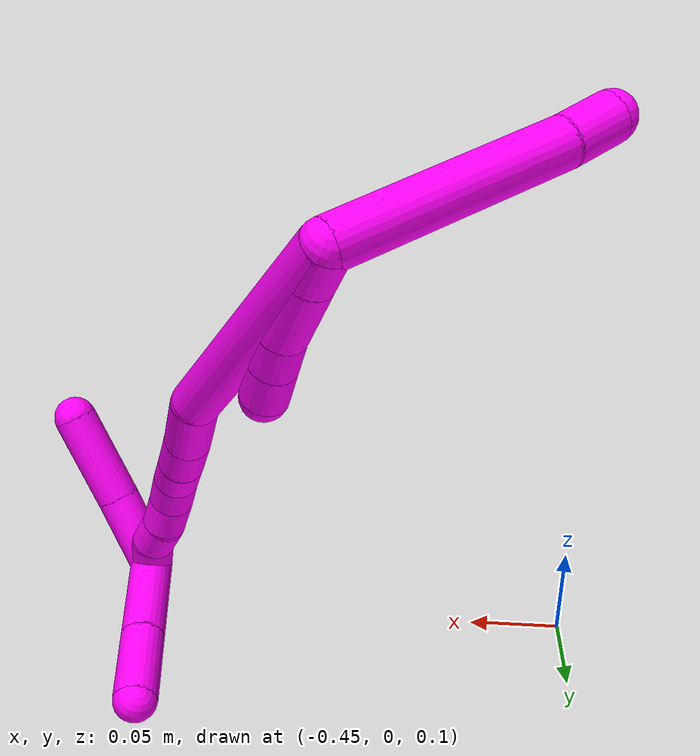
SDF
<sdf version="1.7">
 <world name="default">
  <model name="10">
   <static>0</static>
   <link name="10">
    <collision name="collision-cylinder-e_1_2_8">
     <pose>-0.019665 -0.055153 0.016631 1.27793 -0.328966 -0.245389</pose>
     <geometry><cylinder><radius>0.0125</radius><length>0.12174</length></cylinder></geometry>
     <surface>
      <friction><ode><mu>1.16</mu><mu2>1.16</mu2><slip1>0</slip1><slip2>0</slip2></ode></friction>
      <contact><ode><kp>1e+06</kp><kd>1</kd><max_vel>0</max_vel><min_depth>0.001</min_depth></ode></contact>
     </surface>
    </collision>
    <visual name="visual-cylinder-e_1_2_8">
     <pose>-0.019665 -0.055153 0.016631 1.27793 -0.328966 -0.245389</pose>
     <geometry><cylinder><radius>0.0125</radius><length>0.12174</length></cylinder></geometry>
     <material><ambient>1 0 0.964706 1</ambient></material>
    </visual>
    <collision name="collision-cylinder-e_2_8_6">
     <pose>-0.042602 -0.123569 0.036875 1.30483 -0.233699 -0.17889</pose>
     <geometry><cylinder><radius>0.0125</radius><length>0.02826</length></cylinder></geometry>
     <surface>
      <friction><ode><mu>1.16</mu><mu2>1.16</mu2><slip1>0</slip1><slip2>0</slip2></ode></friction>
      <contact><ode><kp>1e+06</kp><kd>1</kd><max_vel>0</max_vel><min_depth>0.001</min_depth></ode></contact>
     </surface>
    </collision>
    <visual name="visual-cylinder-e_2_8_6">
     <pose>-0.042602 -0.123569 0.036875 1.30483 -0.233699 -0.17889</pose>
     <geometry><cylinder><radius>0.0125</radius><length>0.02826</length></cylinder></geometry>
     <material><ambient>1 0 0.964706 1</ambient></material>
    </visual>
    <collision name="collision-cylinder-e_1_2_9">
     <pose>0.000258 9.8e-05 -0.010558 -3.13228 0.024465 -2.41398</pose>
     <geometry><cylinder><radius>0.0125</radius><length>0.021123</length></cylinder></geometry>
     <surface>
      <friction><ode><mu>1.16</mu><mu2>1.16</mu2><slip1>0</slip1><slip2>0</slip2></ode></friction>
      <contact><ode><kp>1e+06</kp><kd>1</kd><max_vel>0</max_vel><min_depth>0.001</min_depth></ode></contact>
     </surface>
    </collision>
    <visual name="visual-cylinder-e_1_2_9">
     <pose>0.000258 9.8e-05 -0.010558 -3.13228 0.024465 -2.41398</pose>
     <geometry><cylinder><radius>0.0125</radius><length>0.021123</length></cylinder></geometry>
     <material><ambient>1 0 0.964706 1</ambient></material>
    </visual>
    <collision name="collision-cylinder-e_2_9_10">
     <pose>0.000638 0.000677 -0.039267 -3.11512 0.00669 -0.495032</pose>
     <geometry><cylinder><radius>0.0125</radius><length>0.036316</length></cylinder></geometry>
     <surface>
      <friction><ode><mu>1.16</mu><mu2>1.16</mu2><slip1>0</slip1><slip2>0</slip2></ode></friction>
      <contact><ode><kp>1e+06</kp><kd>1</kd><max_vel>0</max_vel><min_depth>0.001</min_depth></ode></contact>
     </surface>
    </collision>
    <visual name="visual-cylinder-e_2_9_10">
     <pose>0.000638 0.000677 -0.039267 -3.11512 0.00669 -0.495032</pose>
     <geometry><cylinder><radius>0.0125</radius><length>0.036316</length></cylinder></geometry>
     <material><ambient>1 0 0.964706 1</ambient></material>
    </visual>
    <collision name="collision-cylinder-e_3_10_11">
     <pose>-0.000333 0.001132 -0.067466 3.13899 -0.108283 -3.09363</pose>
     <geometry><cylinder><radius>0.0125</radius><length>0.020214</length></cylinder></geometry>
     <surface>
      <friction><ode><mu>1.16</mu><mu2>1.16</mu2><slip1>0</slip1><slip2>0</slip2></ode></friction>
      <contact><ode><kp>1e+06</kp><kd>1</kd><max_vel>0</max_vel><min_depth>0.001</min_depth></ode></contact>
     </surface>
    </collision>
    <visual name="visual-cylinder-e_3_10_11">
     <pose>-0.000333 0.001132 -0.067466 3.13899 -0.108283 -3.09363</pose>
     <geometry><cylinder><radius>0.0125</radius><length>0.020214</length></cylinder></geometry>
     <material><ambient>1 0 0.964706 1</ambient></material>
    </visual>
    <collision name="collision-cylinder-e_4_11_5">
     <pose>-0.002674 0.000923 -0.088616 3.12511 -0.111984 -2.84966</pose>
     <geometry><cylinder><radius>0.0125</radius><length>0.022347</length></cylinder></geometry>
     <surface>
      <friction><ode><mu>1.16</mu><mu2>1.16</mu2><slip1>0</slip1><slip2>0</slip2></ode></friction>
      <contact><ode><kp>1e+06</kp><kd>1</kd><max_vel>0</max_vel><min_depth>0.001</min_depth></ode></contact>
     </surface>
    </collision>
    <visual name="visual-cylinder-e_4_11_5">
     <pose>-0.002674 0.000923 -0.088616 3.12511 -0.111984 -2.84966</pose>
     <geometry><cylinder><radius>0.0125</radius><length>0.022347</length></cylinder></geometry>
     <material><ambient>1 0 0.964706 1</ambient></material>
    </visual>
    <collision name="collision-cylinder-e_1_2_12">
     <pose>0.012799 0.003184 -0.066685 -3.09388 0.189418 -2.64939</pose>
     <geometry><cylinder><radius>0.0125</radius><length>0.135955</length></cylinder></geometry>
     <surface>
      <friction><ode><mu>1.16</mu><mu2>1.16</mu2><slip1>0</slip1><slip2>0</slip2></ode></friction>
      <contact><ode><kp>1e+06</kp><kd>1</kd><max_vel>0</max_vel><min_depth>0.001</min_depth></ode></contact>
     </surface>
    </collision>
    <visual name="visual-cylinder-e_1_2_12">
     <pose>0.012799 0.003184 -0.066685 -3.09388 0.189418 -2.64939</pose>
     <geometry><cylinder><radius>0.0125</radius><length>0.135955</length></cylinder></geometry>
     <material><ambient>1 0 0.964706 1</ambient></material>
    </visual>
    <collision name="collision-cylinder-e_2_12_13">
     <pose>0.025297 0.00301 -0.152558 2.96831 -0.015455 -0.177467</pose>
     <geometry><cylinder><radius>0.0125</radius><length>0.038962</length></cylinder></geometry>
     <surface>
      <friction><ode><mu>1.16</mu><mu2>1.16</mu2><slip1>0</slip1><slip2>0</slip2></ode></friction>
      <contact><ode><kp>1e+06</kp><kd>1</kd><max_vel>0</max_vel><min_depth>0.001</min_depth></ode></contact>
     </surface>
    </collision>
    <visual name="visual-cylinder-e_2_12_13">
     <pose>0.025297 0.00301 -0.152558 2.96831 -0.015455 -0.177467</pose>
     <geometry><cylinder><radius>0.0125</radius><length>0.038962</length></cylinder></geometry>
     <material><ambient>1 0 0.964706 1</ambient></material>
    </visual>
    <collision name="collision-cylinder-e_3_13_14">
     <pose>0.024821 -0.001588 -0.183988 3.04072 -0.014287 -0.281176</pose>
     <geometry><cylinder><radius>0.0125</radius><length>0.024614</length></cylinder></geometry>
     <surface>
      <friction><ode><mu>1.16</mu><mu2>1.16</mu2><slip1>0</slip1><slip2>0</slip2></ode></friction>
      <contact><ode><kp>1e+06</kp><kd>1</kd><max_vel>0</max_vel><min_depth>0.001</min_depth></ode></contact>
     </surface>
    </collision>
    <visual name="visual-cylinder-e_3_13_14">
     <pose>0.024821 -0.001588 -0.183988 3.04072 -0.014287 -0.281176</pose>
     <geometry><cylinder><radius>0.0125</radius><length>0.024614</length></cylinder></geometry>
     <material><ambient>1 0 0.964706 1</ambient></material>
    </visual>
    <collision name="collision-cylinder-e_4_14_15">
     <pose>0.024893 -0.004215 -0.206264 3.00413 0.024539 0.352761</pose>
     <geometry><cylinder><radius>0.0125</radius><length>0.020262</length></cylinder></geometry>
     <surface>
      <friction><ode><mu>1.16</mu><mu2>1.16</mu2><slip1>0</slip1><slip2>0</slip2></ode></friction>
      <contact><ode><kp>1e+06</kp><kd>1</kd><max_vel>0</max_vel><min_depth>0.001</min_depth></ode></contact>
     </surface>
    </collision>
    <visual name="visual-cylinder-e_4_14_15">
     <pose>0.024893 -0.004215 -0.206264 3.00413 0.024539 0.352761</pose>
     <geometry><cylinder><radius>0.0125</radius><length>0.020262</length></cylinder></geometry>
     <material><ambient>1 0 0.964706 1</ambient></material>
    </visual>
    <collision name="collision-cylinder-e_5_15_16">
     <pose>0.024114 -0.005645 -0.226327 3.13736 -0.102163 -3.05895</pose>
     <geometry><cylinder><radius>0.0125</radius><length>0.020167</length></cylinder></geometry>
     <surface>
      <friction><ode><mu>1.16</mu><mu2>1.16</mu2><slip1>0</slip1><slip2>0</slip2></ode></friction>
      <contact><ode><kp>1e+06</kp><kd>1</kd><max_vel>0</max_vel><min_depth>0.001</min_depth></ode></contact>
     </surface>
    </collision>
    <visual name="visual-cylinder-e_5_15_16">
     <pose>0.024114 -0.005645 -0.226327 3.13736 -0.102163 -3.05895</pose>
     <geometry><cylinder><radius>0.0125</radius><length>0.020167</length></cylinder></geometry>
     <material><ambient>1 0 0.964706 1</ambient></material>
    </visual>
    <collision name="collision-cylinder-e_6_16_17">
     <pose>0.021555 -0.003845 -0.246083 -2.9544 -0.153386 1.37197</pose>
     <geometry><cylinder><radius>0.0125</radius><length>0.020032</length></cylinder></geometry>
     <surface>
      <friction><ode><mu>1.16</mu><mu2>1.16</mu2><slip1>0</slip1><slip2>0</slip2></ode></friction>
      <contact><ode><kp>1e+06</kp><kd>1</kd><max_vel>0</max_vel><min_depth>0.001</min_depth></ode></contact>
     </surface>
    </collision>
    <visual name="visual-cylinder-e_6_16_17">
     <pose>0.021555 -0.003845 -0.246083 -2.9544 -0.153386 1.37197</pose>
     <geometry><cylinder><radius>0.0125</radius><length>0.020032</length></cylinder></geometry>
     <material><ambient>1 0 0.964706 1</ambient></material>
    </visual>
    <collision name="collision-cylinder-e_7_17_18">
     <pose>0.02043 -0.000543 -0.265695 -2.99499 0.040517 -0.53844</pose>
     <geometry><cylinder><radius>0.0125</radius><length>0.020004</length></cylinder></geometry>
     <surface>
      <friction><ode><mu>1.16</mu><mu2>1.16</mu2><slip1>0</slip1><slip2>0</slip2></ode></friction>
      <contact><ode><kp>1e+06</kp><kd>1</kd><max_vel>0</max_vel><min_depth>0.001</min_depth></ode></contact>
     </surface>
    </collision>
    <visual name="visual-cylinder-e_7_17_18">
     <pose>0.02043 -0.000543 -0.265695 -2.99499 0.040517 -0.53844</pose>
     <geometry><cylinder><radius>0.0125</radius><length>0.020004</length></cylinder></geometry>
     <material><ambient>1 0 0.964706 1</ambient></material>
    </visual>
    <collision name="collision-cylinder-e_8_18_1">
     <pose>0.01842 0.001243 -0.285283 -3.10793 -0.243876 2.8686</pose>
     <geometry><cylinder><radius>0.0125</radius><length>0.020004</length></cylinder></geometry>
     <surface>
      <friction><ode><mu>1.16</mu><mu2>1.16</mu2><slip1>0</slip1><slip2>0</slip2></ode></friction>
      <contact><ode><kp>1e+06</kp><kd>1</kd><max_vel>0</max_vel><min_depth>0.001</min_depth></ode></contact>
     </surface>
    </collision>
    <visual name="visual-cylinder-e_8_18_1">
     <pose>0.01842 0.001243 -0.285283 -3.10793 -0.243876 2.8686</pose>
     <geometry><cylinder><radius>0.0125</radius><length>0.020004</length></cylinder></geometry>
     <material><ambient>1 0 0.964706 1</ambient></material>
    </visual>
    <collision name="collision-cylinder-e_1_1_19">
     <pose>0.035965 -0.001808 -0.285066 0.328297 1.08744 0.199592</pose>
     <geometry><cylinder><radius>0.0125</radius><length>0.045087</length></cylinder></geometry>
     <surface>
      <friction><ode><mu>1.16</mu><mu2>1.16</mu2><slip1>0</slip1><slip2>0</slip2></ode></friction>
      <contact><ode><kp>1e+06</kp><kd>1</kd><max_vel>0</max_vel><min_depth>0.001</min_depth></ode></contact>
     </surface>
    </collision>
    <visual name="visual-cylinder-e_1_1_19">
     <pose>0.035965 -0.001808 -0.285066 0.328297 1.08744 0.199592</pose>
     <geometry><cylinder><radius>0.0125</radius><length>0.045087</length></cylinder></geometry>
     <material><ambient>1 0 0.964706 1</ambient></material>
    </visual>
    <collision name="collision-cylinder-e_2_19_4">
     <pose>0.07992 -0.008118 -0.262127 0.22142 1.06314 0.13055</pose>
     <geometry><cylinder><radius>0.0125</radius><length>0.054913</length></cylinder></geometry>
     <surface>
      <friction><ode><mu>1.16</mu><mu2>1.16</mu2><slip1>0</slip1><slip2>0</slip2></ode></friction>
      <contact><ode><kp>1e+06</kp><kd>1</kd><max_vel>0</max_vel><min_depth>0.001</min_depth></ode></contact>
     </surface>
    </collision>
    <visual name="visual-cylinder-e_2_19_4">
     <pose>0.07992 -0.008118 -0.262127 0.22142 1.06314 0.13055</pose>
     <geometry><cylinder><radius>0.0125</radius><length>0.054913</length></cylinder></geometry>
     <material><ambient>1 0 0.964706 1</ambient></material>
    </visual>
    <collision name="collision-cylinder-e_1_1_20">
     <pose>8.1e-05 0.024191 -0.288803 -1.3041 -0.59651 0.461061</pose>
     <geometry><cylinder><radius>0.0125</radius><length>0.056692</length></cylinder></geometry>
     <surface>
      <friction><ode><mu>1.16</mu><mu2>1.16</mu2><slip1>0</slip1><slip2>0</slip2></ode></friction>
      <contact><ode><kp>1e+06</kp><kd>1</kd><max_vel>0</max_vel><min_depth>0.001</min_depth></ode></contact>
     </surface>
    </collision>
    <visual name="visual-cylinder-e_1_1_20">
     <pose>8.1e-05 0.024191 -0.288803 -1.3041 -0.59651 0.461061</pose>
     <geometry><cylinder><radius>0.0125</radius><length>0.056692</length></cylinder></geometry>
     <material><ambient>1 0 0.964706 1</ambient></material>
    </visual>
    <collision name="collision-cylinder-e_2_20_3">
     <pose>-0.028114 0.064083 -0.278146 -1.31715 -0.602498 0.471907</pose>
     <geometry><cylinder><radius>0.0125</radius><length>0.043308</length></cylinder></geometry>
     <surface>
      <friction><ode><mu>1.16</mu><mu2>1.16</mu2><slip1>0</slip1><slip2>0</slip2></ode></friction>
      <contact><ode><kp>1e+06</kp><kd>1</kd><max_vel>0</max_vel><min_depth>0.001</min_depth></ode></contact>
     </surface>
    </collision>
    <visual name="visual-cylinder-e_2_20_3">
     <pose>-0.028114 0.064083 -0.278146 -1.31715 -0.602498 0.471907</pose>
     <geometry><cylinder><radius>0.0125</radius><length>0.043308</length></cylinder></geometry>
     <material><ambient>1 0 0.964706 1</ambient></material>
    </visual>
    <collision name="collision-sphere-3">
     <pose>-0.040385 0.081354 -0.273669 0 -0 0</pose>
     <geometry><sphere><radius>0.0125</radius></sphere></geometry>
     <surface>
      <friction><ode><mu>1.16</mu><mu2>1.16</mu2><slip1>0</slip1><slip2>0</slip2></ode></friction>
      <contact><ode><kp>1e+06</kp><kd>1</kd><max_vel>0</max_vel><min_depth>0.001</min_depth></ode></contact>
     </surface>
    </collision>
    <visual name="visual-sphere-3">
     <pose>-0.040385 0.081354 -0.273669 0 -0 0</pose>
     <geometry><sphere><radius>0.0125</radius></sphere></geometry>
     <material><ambient>1 0 0.964706 1</ambient></material>
    </visual>
    <collision name="collision-sphere-20">
     <pose>-0.015842 0.046813 -0.282623 0 -0 0</pose>
     <geometry><sphere><radius>0.0125</radius></sphere></geometry>
     <surface>
      <friction><ode><mu>1.16</mu><mu2>1.16</mu2><slip1>0</slip1><slip2>0</slip2></ode></friction>
      <contact><ode><kp>1e+06</kp><kd>1</kd><max_vel>0</max_vel><min_depth>0.001</min_depth></ode></contact>
     </surface>
    </collision>
    <visual name="visual-sphere-20">
     <pose>-0.015842 0.046813 -0.282623 0 -0 0</pose>
     <geometry><sphere><radius>0.0125</radius></sphere></geometry>
     <material><ambient>1 0 0.964706 1</ambient></material>
    </visual>
    <collision name="collision-sphere-4">
     <pose>0.103914 -0.011049 -0.249105 0 -0 0</pose>
     <geometry><sphere><radius>0.0125</radius></sphere></geometry>
     <surface>
      <friction><ode><mu>1.16</mu><mu2>1.16</mu2><slip1>0</slip1><slip2>0</slip2></ode></friction>
      <contact><ode><kp>1e+06</kp><kd>1</kd><max_vel>0</max_vel><min_depth>0.001</min_depth></ode></contact>
     </surface>
    </collision>
    <visual name="visual-sphere-4">
     <pose>0.103914 -0.011049 -0.249105 0 -0 0</pose>
     <geometry><sphere><radius>0.0125</radius></sphere></geometry>
     <material><ambient>1 0 0.964706 1</ambient></material>
    </visual>
    <collision name="collision-sphere-11">
     <pose>-0.001425 0.001106 -0.077514 0 -0 0</pose>
     <geometry><sphere><radius>0.0125</radius></sphere></geometry>
     <surface>
      <friction><ode><mu>1.16</mu><mu2>1.16</mu2><slip1>0</slip1><slip2>0</slip2></ode></friction>
      <contact><ode><kp>1e+06</kp><kd>1</kd><max_vel>0</max_vel><min_depth>0.001</min_depth></ode></contact>
     </surface>
    </collision>
    <visual name="visual-sphere-11">
     <pose>-0.001425 0.001106 -0.077514 0 -0 0</pose>
     <geometry><sphere><radius>0.0125</radius></sphere></geometry>
     <material><ambient>1 0 0.964706 1</ambient></material>
    </visual>
    <collision name="collision-sphere-10">
     <pose>0.00076 0.001158 -0.057418 0 -0 0</pose>
     <geometry><sphere><radius>0.0125</radius></sphere></geometry>
     <surface>
      <friction><ode><mu>1.16</mu><mu2>1.16</mu2><slip1>0</slip1><slip2>0</slip2></ode></friction>
      <contact><ode><kp>1e+06</kp><kd>1</kd><max_vel>0</max_vel><min_depth>0.001</min_depth></ode></contact>
     </surface>
    </collision>
    <visual name="visual-sphere-10">
     <pose>0.00076 0.001158 -0.057418 0 -0 0</pose>
     <geometry><sphere><radius>0.0125</radius></sphere></geometry>
     <material><ambient>1 0 0.964706 1</ambient></material>
    </visual>
    <collision name="collision-sphere-6">
     <pose>-0.045874 -0.136831 0.040488 0 -0 0</pose>
     <geometry><sphere><radius>0.0125</radius></sphere></geometry>
     <surface>
      <friction><ode><mu>1.16</mu><mu2>1.16</mu2><slip1>0</slip1><slip2>0</slip2></ode></friction>
      <contact><ode><kp>1e+06</kp><kd>1</kd><max_vel>0</max_vel><min_depth>0.001</min_depth></ode></contact>
     </surface>
    </collision>
    <visual name="visual-sphere-6">
     <pose>-0.045874 -0.136831 0.040488 0 -0 0</pose>
     <geometry><sphere><radius>0.0125</radius></sphere></geometry>
     <material><ambient>1 0 0.964706 1</ambient></material>
    </visual>
    <collision name="collision-sphere-9">
     <pose>0.000517 0.000197 -0.021116 0 -0 0</pose>
     <geometry><sphere><radius>0.0125</radius></sphere></geometry>
     <surface>
      <friction><ode><mu>1.16</mu><mu2>1.16</mu2><slip1>0</slip1><slip2>0</slip2></ode></friction>
      <contact><ode><kp>1e+06</kp><kd>1</kd><max_vel>0</max_vel><min_depth>0.001</min_depth></ode></contact>
     </surface>
    </collision>
    <visual name="visual-sphere-9">
     <pose>0.000517 0.000197 -0.021116 0 -0 0</pose>
     <geometry><sphere><radius>0.0125</radius></sphere></geometry>
     <material><ambient>1 0 0.964706 1</ambient></material>
    </visual>
    <collision name="collision-sphere-2">
     <geometry><sphere><radius>0.0125</radius></sphere></geometry>
     <surface>
      <friction><ode><mu>1.16</mu><mu2>1.16</mu2><slip1>0</slip1><slip2>0</slip2></ode></friction>
      <contact><ode><kp>1e+06</kp><kd>1</kd><max_vel>0</max_vel><min_depth>0.001</min_depth></ode></contact>
     </surface>
    </collision>
    <visual name="visual-sphere-2">
     <geometry><sphere><radius>0.0125</radius></sphere></geometry>
     <material><ambient>1 0 0.964706 1</ambient></material>
    </visual>
    <collision name="collision-sphere-19">
     <pose>0.055926 -0.005187 -0.275148 0 -0 0</pose>
     <geometry><sphere><radius>0.0125</radius></sphere></geometry>
     <surface>
      <friction><ode><mu>1.16</mu><mu2>1.16</mu2><slip1>0</slip1><slip2>0</slip2></ode></friction>
      <contact><ode><kp>1e+06</kp><kd>1</kd><max_vel>0</max_vel><min_depth>0.001</min_depth></ode></contact>
     </surface>
    </collision>
    <visual name="visual-sphere-19">
     <pose>0.055926 -0.005187 -0.275148 0 -0 0</pose>
     <geometry><sphere><radius>0.0125</radius></sphere></geometry>
     <material><ambient>1 0 0.964706 1</ambient></material>
    </visual>
    <collision name="collision-sphere-8">
     <pose>-0.03933 -0.110306 0.033262 0 -0 0</pose>
     <geometry><sphere><radius>0.0125</radius></sphere></geometry>
     <surface>
      <friction><ode><mu>1.16</mu><mu2>1.16</mu2><slip1>0</slip1><slip2>0</slip2></ode></friction>
      <contact><ode><kp>1e+06</kp><kd>1</kd><max_vel>0</max_vel><min_depth>0.001</min_depth></ode></contact>
     </surface>
    </collision>
    <visual name="visual-sphere-8">
     <pose>-0.03933 -0.110306 0.033262 0 -0 0</pose>
     <geometry><sphere><radius>0.0125</radius></sphere></geometry>
     <material><ambient>1 0 0.964706 1</ambient></material>
    </visual>
    <collision name="collision-sphere-5">
     <pose>-0.003922 0.00074 -0.099718 0 -0 0</pose>
     <geometry><sphere><radius>0.0125</radius></sphere></geometry>
     <surface>
      <friction><ode><mu>1.16</mu><mu2>1.16</mu2><slip1>0</slip1><slip2>0</slip2></ode></friction>
      <contact><ode><kp>1e+06</kp><kd>1</kd><max_vel>0</max_vel><min_depth>0.001</min_depth></ode></contact>
     </surface>
    </collision>
    <visual name="visual-sphere-5">
     <pose>-0.003922 0.00074 -0.099718 0 -0 0</pose>
     <geometry><sphere><radius>0.0125</radius></sphere></geometry>
     <material><ambient>1 0 0.964706 1</ambient></material>
    </visual>
    <collision name="collision-sphere-12">
     <pose>0.025599 0.006369 -0.133371 0 -0 0</pose>
     <geometry><sphere><radius>0.0125</radius></sphere></geometry>
     <surface>
      <friction><ode><mu>1.16</mu><mu2>1.16</mu2><slip1>0</slip1><slip2>0</slip2></ode></friction>
      <contact><ode><kp>1e+06</kp><kd>1</kd><max_vel>0</max_vel><min_depth>0.001</min_depth></ode></contact>
     </surface>
    </collision>
    <visual name="visual-sphere-12">
     <pose>0.025599 0.006369 -0.133371 0 -0 0</pose>
     <geometry><sphere><radius>0.0125</radius></sphere></geometry>
     <material><ambient>1 0 0.964706 1</ambient></material>
    </visual>
    <collision name="collision-sphere-13">
     <pose>0.024996 -0.000348 -0.171745 0 -0 0</pose>
     <geometry><sphere><radius>0.0125</radius></sphere></geometry>
     <surface>
      <friction><ode><mu>1.16</mu><mu2>1.16</mu2><slip1>0</slip1><slip2>0</slip2></ode></friction>
      <contact><ode><kp>1e+06</kp><kd>1</kd><max_vel>0</max_vel><min_depth>0.001</min_depth></ode></contact>
     </surface>
    </collision>
    <visual name="visual-sphere-13">
     <pose>0.024996 -0.000348 -0.171745 0 -0 0</pose>
     <geometry><sphere><radius>0.0125</radius></sphere></geometry>
     <material><ambient>1 0 0.964706 1</ambient></material>
    </visual>
    <collision name="collision-sphere-14">
     <pose>0.024645 -0.002827 -0.196232 0 -0 0</pose>
     <geometry><sphere><radius>0.0125</radius></sphere></geometry>
     <surface>
      <friction><ode><mu>1.16</mu><mu2>1.16</mu2><slip1>0</slip1><slip2>0</slip2></ode></friction>
      <contact><ode><kp>1e+06</kp><kd>1</kd><max_vel>0</max_vel><min_depth>0.001</min_depth></ode></contact>
     </surface>
    </collision>
    <visual name="visual-sphere-14">
     <pose>0.024645 -0.002827 -0.196232 0 -0 0</pose>
     <geometry><sphere><radius>0.0125</radius></sphere></geometry>
     <material><ambient>1 0 0.964706 1</ambient></material>
    </visual>
    <collision name="collision-sphere-15">
     <pose>0.025142 -0.005603 -0.216297 0 -0 0</pose>
     <geometry><sphere><radius>0.0125</radius></sphere></geometry>
     <surface>
      <friction><ode><mu>1.16</mu><mu2>1.16</mu2><slip1>0</slip1><slip2>0</slip2></ode></friction>
      <contact><ode><kp>1e+06</kp><kd>1</kd><max_vel>0</max_vel><min_depth>0.001</min_depth></ode></contact>
     </surface>
    </collision>
    <visual name="visual-sphere-15">
     <pose>0.025142 -0.005603 -0.216297 0 -0 0</pose>
     <geometry><sphere><radius>0.0125</radius></sphere></geometry>
     <material><ambient>1 0 0.964706 1</ambient></material>
    </visual>
    <collision name="collision-sphere-16">
     <pose>0.023085 -0.005688 -0.236358 0 -0 0</pose>
     <geometry><sphere><radius>0.0125</radius></sphere></geometry>
     <surface>
      <friction><ode><mu>1.16</mu><mu2>1.16</mu2><slip1>0</slip1><slip2>0</slip2></ode></friction>
      <contact><ode><kp>1e+06</kp><kd>1</kd><max_vel>0</max_vel><min_depth>0.001</min_depth></ode></contact>
     </surface>
    </collision>
    <visual name="visual-sphere-16">
     <pose>0.023085 -0.005688 -0.236358 0 -0 0</pose>
     <geometry><sphere><radius>0.0125</radius></sphere></geometry>
     <material><ambient>1 0 0.964706 1</ambient></material>
    </visual>
    <collision name="collision-sphere-17">
     <pose>0.020025 -0.002003 -0.255809 0 -0 0</pose>
     <geometry><sphere><radius>0.0125</radius></sphere></geometry>
     <surface>
      <friction><ode><mu>1.16</mu><mu2>1.16</mu2><slip1>0</slip1><slip2>0</slip2></ode></friction>
      <contact><ode><kp>1e+06</kp><kd>1</kd><max_vel>0</max_vel><min_depth>0.001</min_depth></ode></contact>
     </surface>
    </collision>
    <visual name="visual-sphere-17">
     <pose>0.020025 -0.002003 -0.255809 0 -0 0</pose>
     <geometry><sphere><radius>0.0125</radius></sphere></geometry>
     <material><ambient>1 0 0.964706 1</ambient></material>
    </visual>
    <collision name="collision-sphere-18">
     <pose>0.020835 0.000916 -0.275582 0 -0 0</pose>
     <geometry><sphere><radius>0.0125</radius></sphere></geometry>
     <surface>
      <friction><ode><mu>1.16</mu><mu2>1.16</mu2><slip1>0</slip1><slip2>0</slip2></ode></friction>
      <contact><ode><kp>1e+06</kp><kd>1</kd><max_vel>0</max_vel><min_depth>0.001</min_depth></ode></contact>
     </surface>
    </collision>
    <visual name="visual-sphere-18">
     <pose>0.020835 0.000916 -0.275582 0 -0 0</pose>
     <geometry><sphere><radius>0.0125</radius></sphere></geometry>
     <material><ambient>1 0 0.964706 1</ambient></material>
    </visual>
    <collision name="collision-sphere-1">
     <pose>0.016005 0.00157 -0.294983 0 -0 0</pose>
     <geometry><sphere><radius>0.0125</radius></sphere></geometry>
     <surface>
      <friction><ode><mu>1.16</mu><mu2>1.16</mu2><slip1>0</slip1><slip2>0</slip2></ode></friction>
      <contact><ode><kp>1e+06</kp><kd>1</kd><max_vel>0</max_vel><min_depth>0.001</min_depth></ode></contact>
     </surface>
    </collision>
    <visual name="visual-sphere-1">
     <pose>0.016005 0.00157 -0.294983 0 -0 0</pose>
     <geometry><sphere><radius>0.0125</radius></sphere></geometry>
     <material><ambient>1 0 0.964706 1</ambient></material>
    </visual>
    <inertial>
     <pose>0.00893 -0.008357 -0.135768 0 -0 0</pose>
     <mass>0.75</mass>
     <inertia><ixx>-0.00013</ixx><ixy>0</ixy><ixz>0</ixz><iyy>0.00014</iyy><iyz>0</iyz><izz>9.8e-05</izz></inertia>
    </inertial>
   </link>
   <pose>-0.319108 0.101135 0.360587 -0.208512 -0.511143 -0.457388</pose>
  </model>
 </world>
</sdf>
